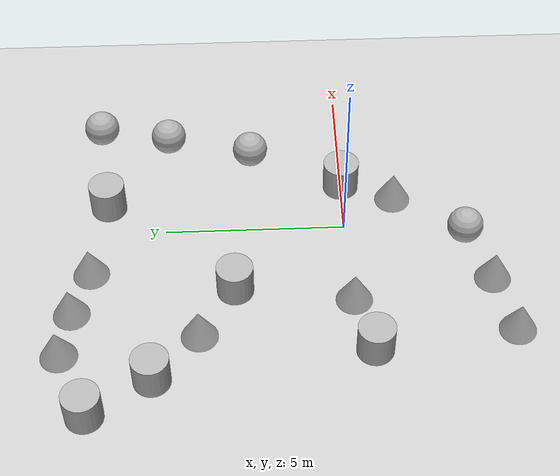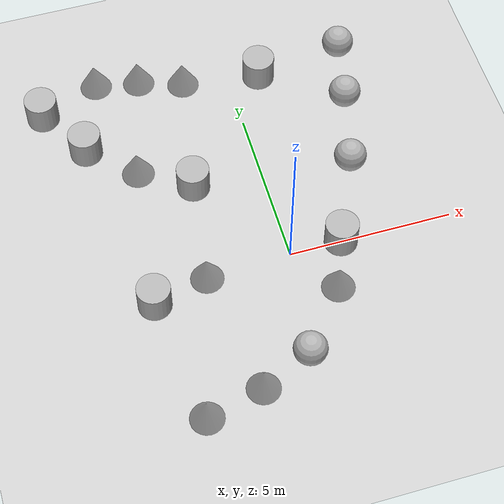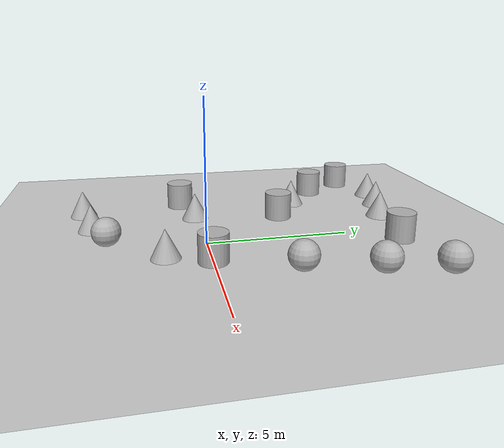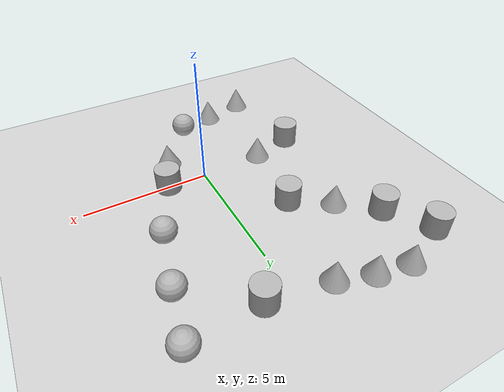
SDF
<?xml version="1.0" ?>
<sdf version='1.10'>
  <world name='vehicle_test'>
    <physics name='1ms' type='ignored'>
      <max_step_size>0.001</max_step_size>
      <real_time_factor>1.0</real_time_factor>
      <real_time_update_rate>1000</real_time_update_rate>
    </physics>
    <plugin name='gz::sim::systems::Physics' filename='gz-sim-physics-system'/>
    <plugin filename="gz-sim-sensors-system" name="gz::sim::systems::Sensors">
      <render_engine>ogre2</render_engine>
    </plugin>
    <plugin name='gz::sim::systems::UserCommands' filename='gz-sim-user-commands-system'/>
    <plugin name='gz::sim::systems::SceneBroadcaster' filename='gz-sim-scene-broadcaster-system'/>
    <plugin name='gz::sim::systems::Contact' filename='gz-sim-contact-system'/>
    <gravity>0 0 -9.8000000000000007</gravity>
    <magnetic_field>5.5644999999999998e-06 2.2875799999999999e-05 -4.2388400000000002e-05</magnetic_field>
    <atmosphere type='adiabatic'/>
    <scene>
      <ambient>0.400000006 0.400000006 0.400000006 1</ambient>
      <background>0.699999988 0.699999988 0.699999988 1</background>
      <shadows>true</shadows>
    </scene>

    <gui fullscreen="0">

      <!-- 3D scene -->
      <plugin filename="MinimalScene" name="3D View">
        <gz-gui>
          <title>3D View</title>
          <property type="bool" key="showTitleBar">false</property>
          <property type="string" key="state">docked</property>
        </gz-gui>

        <engine>ogre2</engine>
        <scene>scene</scene>
        <ambient_light>0.4 0.4 0.4</ambient_light>
        <background_color>0.8 0.8 0.8</background_color>
        <camera_pose>-6 0 6 0 0.5 0</camera_pose>
      </plugin>

      <!-- Plugins that add functionality to the scene -->
      <plugin filename="EntityContextMenuPlugin" name="Entity context menu">
        <gz-gui>
          <property key="state" type="string">floating</property>
          <property key="width" type="double">5</property>
          <property key="height" type="double">5</property>
          <property key="showTitleBar" type="bool">false</property>
        </gz-gui>
      </plugin>
      <plugin filename="GzSceneManager" name="Scene Manager">
        <gz-gui>
          <property key="resizable" type="bool">false</property>
          <property key="width" type="double">5</property>
          <property key="height" type="double">5</property>
          <property key="state" type="string">floating</property>
          <property key="showTitleBar" type="bool">false</property>
        </gz-gui>
      </plugin>
      <plugin filename="InteractiveViewControl" name="Interactive view control">
        <gz-gui>
          <property key="resizable" type="bool">false</property>
          <property key="width" type="double">5</property>
          <property key="height" type="double">5</property>
          <property key="state" type="string">floating</property>
          <property key="showTitleBar" type="bool">false</property>
        </gz-gui>
      </plugin>
      <plugin filename="CameraTracking" name="Camera Tracking">
        <gz-gui>
          <property key="resizable" type="bool">false</property>
          <property key="width" type="double">5</property>
          <property key="height" type="double">5</property>
          <property key="state" type="string">floating</property>
          <property key="showTitleBar" type="bool">false</property>
        </gz-gui>
      </plugin>
      <!-- World control -->
      <plugin filename="WorldControl" name="World control">
        <gz-gui>
          <title>World control</title>
          <property type="bool" key="showTitleBar">false</property>
          <property type="bool" key="resizable">false</property>
          <property type="double" key="height">72</property>
          <property type="double" key="z">1</property>

          <property type="string" key="state">floating</property>
          <anchors target="3D View">
            <line own="left" target="left"/>
            <line own="bottom" target="bottom"/>
          </anchors>
        </gz-gui>

        <play_pause>true</play_pause>
        <step>true</step>
        <start_paused>true</start_paused>
        <use_event>true</use_event>

      </plugin>

      <!-- World statistics -->
      <plugin filename="WorldStats" name="World stats">
        <gz-gui>
          <title>World stats</title>
          <property type="bool" key="showTitleBar">false</property>
          <property type="bool" key="resizable">false</property>
          <property type="double" key="height">110</property>
          <property type="double" key="width">290</property>
          <property type="double" key="z">1</property>

          <property type="string" key="state">floating</property>
          <anchors target="3D View">
            <line own="right" target="right"/>
            <line own="bottom" target="bottom"/>
          </anchors>
        </gz-gui>

        <sim_time>true</sim_time>
        <real_time>true</real_time>
        <real_time_factor>true</real_time_factor>
        <iterations>true</iterations>
      </plugin>

      <plugin filename="ImageDisplay" name="Image Display">
        <gz-gui>
          <property key="state" type="string">docked</property>
        </gz-gui>
        <topic>camera</topic>
      </plugin>

      <!-- Inspector -->
      <plugin filename="ComponentInspector" name="Component inspector">
        <gz-gui>
          <property type="string" key="state">docked</property>
        </gz-gui>
      </plugin>

      <!-- Entity tree -->
      <plugin filename="EntityTree" name="Entity tree">
        <gz-gui>
          <property type="string" key="state">docked</property>
        </gz-gui>
      </plugin>
    </gui>

    <model name='ground_plane'>
      <static>true</static>
      <link name='link'>
        <collision name='collision'>
          <geometry>
            <plane>
              <normal>0 0 1</normal>
              <size>100 100</size>
            </plane>
          </geometry>
          <surface>
            <friction>
              <ode/>
            </friction>
            <bounce/>
            <contact/>
          </surface>
        </collision>
        <visual name='visual'>
          <geometry>
            <plane>
              <normal>0 0 1</normal>
              <size>100 100</size>
            </plane>
          </geometry>
          <material>
            <ambient>0.800000012 0.800000012 0.800000012 1</ambient>
            <diffuse>0.800000012 0.800000012 0.800000012 1</diffuse>
            <specular>0.800000012 0.800000012 0.800000012 1</specular>
          </material>
        </visual>
        <pose>0 0 0 0 0 0</pose>
        <inertial>
          <pose>0 0 0 0 0 0</pose>
          <mass>1</mass>
          <inertia>
            <ixx>1</ixx>
            <ixy>0</ixy>
            <ixz>0</ixz>
            <iyy>1</iyy>
            <iyz>0</iyz>
            <izz>1</izz>
          </inertia>
        </inertial>
        <enable_wind>false</enable_wind>
      </link>
      <pose>0 0 0 0 0 0</pose>
      <self_collide>false</self_collide>
    </model>
    <model name='cylinder'>
      <pose>1.5647848737874555 0.010033061765128103 0.49999944042621192 1.1442302697829374e-08 2.7877531892033051e-08 -0.00070044208963606996</pose>
      <link name='cylinder_link'>
        <inertial>
          <inertia>
            <ixx>0.14580000000000001</ixx>
            <ixy>0</ixy>
            <ixz>0</ixz>
            <iyy>0.14580000000000001</iyy>
            <iyz>0</iyz>
            <izz>0.125</izz>
          </inertia>
          <mass>1</mass>
          <pose>0 0 0 0 0 0</pose>
        </inertial>
        <collision name='cylinder_collision'>
          <geometry>
            <cylinder>
              <radius>0.5</radius>
              <length>1</length>
            </cylinder>
          </geometry>
          <surface>
            <friction>
              <ode/>
            </friction>
            <bounce/>
            <contact/>
          </surface>
        </collision>
        <visual name='cylinder_visual'>
          <geometry>
            <cylinder>
              <radius>0.5</radius>
              <length>1</length>
            </cylinder>
          </geometry>
          <material>
            <ambient>0.300000012 0.300000012 0.300000012 1</ambient>
            <diffuse>0.699999988 0.699999988 0.699999988 1</diffuse>
            <specular>1 1 1 1</specular>
          </material>
        </visual>
        <pose>0 0 0 0 0 0</pose>
        <enable_wind>false</enable_wind>
      </link>
      <static>false</static>
      <self_collide>false</self_collide>
    </model>
    <model name='cone'>
      <pose>1.011980552601476 -1.4393473997717166 0.49999999695181524 9.7358342084038461e-11 -1.9626711399837725e-05 4.5009593917777258e-11</pose>
      <link name='cone_link'>
        <inertial>
          <inertia>
            <ixx>0.074999999999999997</ixx>
            <ixy>0</ixy>
            <ixz>0</ixz>
            <iyy>0.074999999999999997</iyy>
            <iyz>0</iyz>
            <izz>0.074999999999999997</izz>
          </inertia>
          <mass>1</mass>
          <pose>0 0 0 0 0 0</pose>
        </inertial>
        <collision name='cone_collision'>
          <geometry>
            <cone>
              <radius>0.5</radius>
              <length>1</length>
            </cone>
          </geometry>
          <surface>
            <friction>
              <ode/>
            </friction>
            <bounce/>
            <contact/>
          </surface>
        </collision>
        <visual name='cone_visual'>
          <geometry>
            <cone>
              <radius>0.5</radius>
              <length>1</length>
            </cone>
          </geometry>
          <material>
            <ambient>0.300000012 0.300000012 0.300000012 1</ambient>
            <diffuse>0.699999988 0.699999988 0.699999988 1</diffuse>
            <specular>1 1 1 1</specular>
          </material>
        </visual>
        <pose>0 0 0 0 0 0</pose>
        <enable_wind>false</enable_wind>
      </link>
      <static>false</static>
      <self_collide>false</self_collide>
    </model>
    <model name='sphere'>
      <pose>-0.45418939601739705 -3.3253064551731351 0.499999999902001 0 0 0</pose>
      <link name='sphere_link'>
        <inertial>
          <inertia>
            <ixx>0.10000000000000001</ixx>
            <ixy>0</ixy>
            <ixz>0</ixz>
            <iyy>0.10000000000000001</iyy>
            <iyz>0</iyz>
            <izz>0.10000000000000001</izz>
          </inertia>
          <mass>1</mass>
          <pose>0 0 0 0 0 0</pose>
        </inertial>
        <collision name='sphere_collision'>
          <geometry>
            <sphere>
              <radius>0.5</radius>
            </sphere>
          </geometry>
          <surface>
            <friction>
              <ode/>
            </friction>
            <bounce/>
            <contact/>
          </surface>
        </collision>
        <visual name='sphere_visual'>
          <geometry>
            <sphere>
              <radius>0.5</radius>
            </sphere>
          </geometry>
          <material>
            <ambient>0.300000012 0.300000012 0.300000012 1</ambient>
            <diffuse>0.699999988 0.699999988 0.699999988 1</diffuse>
            <specular>1 1 1 1</specular>
          </material>
        </visual>
        <pose>0 0 0 0 0 0</pose>
        <enable_wind>false</enable_wind>
      </link>
      <static>false</static>
      <self_collide>false</self_collide>
    </model>
    <model name='cone_1'>
      <pose>-1.9885448380206669 -3.9166643840087687 0.49999347335369304 7.6259716499693577e-05 -0.00033780207860231243 -0.0034619177063149298</pose>
      <link name='cone_link'>
        <inertial>
          <inertia>
            <ixx>0.074999999999999997</ixx>
            <ixy>0</ixy>
            <ixz>0</ixz>
            <iyy>0.074999999999999997</iyy>
            <iyz>0</iyz>
            <izz>0.074999999999999997</izz>
          </inertia>
          <mass>1</mass>
        </inertial>
        <collision name='cone_collision'>
          <geometry>
            <cone>
              <radius>0.5</radius>
              <length>1</length>
            </cone>
          </geometry>
          <surface>
            <friction>
              <ode/>
            </friction>
            <bounce/>
            <contact/>
          </surface>
        </collision>
        <visual name='cone_visual'>
          <geometry>
            <cone>
              <radius>0.5</radius>
              <length>1</length>
            </cone>
          </geometry>
          <material>
            <ambient>0.300000012 0.300000012 0.300000012 1</ambient>
            <diffuse>0.699999988 0.699999988 0.699999988 1</diffuse>
            <specular>1 1 1 1</specular>
          </material>
        </visual>
      </link>
      <static>false</static>
      <self_collide>false</self_collide>
    </model>
    <model name='cone_2'>
      <pose>-3.729447961379035 -4.3420305184071379 0.5000006705392287 0.00032293008135543457 -0.001948347182720245 -0.0013240089350690537</pose>
      <link name='cone_link'>
        <inertial>
          <inertia>
            <ixx>0.074999999999999997</ixx>
            <ixy>0</ixy>
            <ixz>0</ixz>
            <iyy>0.074999999999999997</iyy>
            <iyz>0</iyz>
            <izz>0.074999999999999997</izz>
          </inertia>
          <mass>1</mass>
        </inertial>
        <collision name='cone_collision'>
          <geometry>
            <cone>
              <radius>0.5</radius>
              <length>1</length>
            </cone>
          </geometry>
          <surface>
            <friction>
              <ode/>
            </friction>
            <bounce/>
            <contact/>
          </surface>
        </collision>
        <visual name='cone_visual'>
          <geometry>
            <cone>
              <radius>0.5</radius>
              <length>1</length>
            </cone>
          </geometry>
          <material>
            <ambient>0.300000012 0.300000012 0.300000012 1</ambient>
            <diffuse>0.699999988 0.699999988 0.699999988 1</diffuse>
            <specular>1 1 1 1</specular>
          </material>
        </visual>
      </link>
      <static>false</static>
      <self_collide>false</self_collide>
    </model>
    <model name='cone_3'>
      <pose>-2.5738506671006336 -0.10183911211924816 0.50000747423529857 0.00053269511846450646 -0.0088594424058349146 0.0008755440853242994</pose>
      <link name='cone_link'>
        <inertial>
          <inertia>
            <ixx>0.074999999999999997</ixx>
            <ixy>0</ixy>
            <ixz>0</ixz>
            <iyy>0.074999999999999997</iyy>
            <iyz>0</iyz>
            <izz>0.074999999999999997</izz>
          </inertia>
          <mass>1</mass>
        </inertial>
        <collision name='cone_collision'>
          <geometry>
            <cone>
              <radius>0.5</radius>
              <length>1</length>
            </cone>
          </geometry>
          <surface>
            <friction>
              <ode/>
            </friction>
            <bounce/>
            <contact/>
          </surface>
        </collision>
        <visual name='cone_visual'>
          <geometry>
            <cone>
              <radius>0.5</radius>
              <length>1</length>
            </cone>
          </geometry>
          <material>
            <ambient>0.300000012 0.300000012 0.300000012 1</ambient>
            <diffuse>0.699999988 0.699999988 0.699999988 1</diffuse>
            <specular>1 1 1 1</specular>
          </material>
        </visual>
      </link>
      <static>false</static>
      <self_collide>false</self_collide>
    </model>
    <model name='cylinder_1'>
      <pose>-4.2439677708986236 -0.53501030915123304 0.49999944744188046 -1.7793100737709771e-08 -4.335983781538555e-08 -0.00070056579943730401</pose>
      <link name='cylinder_link'>
        <inertial>
          <inertia>
            <ixx>0.14580000000000001</ixx>
            <ixy>0</ixy>
            <ixz>0</ixz>
            <iyy>0.14580000000000001</iyy>
            <iyz>0</iyz>
            <izz>0.125</izz>
          </inertia>
          <mass>1</mass>
        </inertial>
        <collision name='cylinder_collision'>
          <geometry>
            <cylinder>
              <radius>0.5</radius>
              <length>1</length>
            </cylinder>
          </geometry>
          <surface>
            <friction>
              <ode/>
            </friction>
            <bounce/>
            <contact/>
          </surface>
        </collision>
        <visual name='cylinder_visual'>
          <geometry>
            <cylinder>
              <radius>0.5</radius>
              <length>1</length>
            </cylinder>
          </geometry>
          <material>
            <ambient>0.300000012 0.300000012 0.300000012 1</ambient>
            <diffuse>0.699999988 0.699999988 0.699999988 1</diffuse>
            <specular>1 1 1 1</specular>
          </material>
        </visual>
      </link>
      <static>false</static>
      <self_collide>false</self_collide>
    </model>
    <model name='cylinder_2'>
      <pose>-2.1317149332918617 3.0851914767424966 0.49999945265357915 -2.1145951382164412e-08 -5.1597813862078297e-08 -0.00070033138959422591</pose>
      <link name='cylinder_link'>
        <inertial>
          <inertia>
            <ixx>0.14580000000000001</ixx>
            <ixy>0</ixy>
            <ixz>0</ixz>
            <iyy>0.14580000000000001</iyy>
            <iyz>0</iyz>
            <izz>0.125</izz>
          </inertia>
          <mass>1</mass>
        </inertial>
        <collision name='cylinder_collision'>
          <geometry>
            <cylinder>
              <radius>0.5</radius>
              <length>1</length>
            </cylinder>
          </geometry>
          <surface>
            <friction>
              <ode/>
            </friction>
            <bounce/>
            <contact/>
          </surface>
        </collision>
        <visual name='cylinder_visual'>
          <geometry>
            <cylinder>
              <radius>0.5</radius>
              <length>1</length>
            </cylinder>
          </geometry>
          <material>
            <ambient>0.300000012 0.300000012 0.300000012 1</ambient>
            <diffuse>0.699999988 0.699999988 0.699999988 1</diffuse>
            <specular>1 1 1 1</specular>
          </material>
        </visual>
      </link>
      <static>false</static>
      <self_collide>false</self_collide>
    </model>
    <model name='cylinder_3'>
      <pose>0.9680648221317355 6.6413886767882664 0.49999934507746907 7.8902019559198622e-08 1.9300384302545624e-07 -0.00070041176143936735</pose>
      <link name='cylinder_link'>
        <inertial>
          <inertia>
            <ixx>0.14580000000000001</ixx>
            <ixy>0</ixy>
            <ixz>0</ixz>
            <iyy>0.14580000000000001</iyy>
            <iyz>0</iyz>
            <izz>0.125</izz>
          </inertia>
          <mass>1</mass>
        </inertial>
        <collision name='cylinder_collision'>
          <geometry>
            <cylinder>
              <radius>0.5</radius>
              <length>1</length>
            </cylinder>
          </geometry>
          <surface>
            <friction>
              <ode/>
            </friction>
            <bounce/>
            <contact/>
          </surface>
        </collision>
        <visual name='cylinder_visual'>
          <geometry>
            <cylinder>
              <radius>0.5</radius>
              <length>1</length>
            </cylinder>
          </geometry>
          <material>
            <ambient>0.300000012 0.300000012 0.300000012 1</ambient>
            <diffuse>0.699999988 0.699999988 0.699999988 1</diffuse>
            <specular>1 1 1 1</specular>
          </material>
        </visual>
      </link>
      <static>false</static>
      <self_collide>false</self_collide>
    </model>
    <model name='sphere_1'>
      <pose>2.7082596078731678 2.5902424265151147 0.499999999902001 0 0 0</pose>
      <link name='sphere_link'>
        <inertial>
          <inertia>
            <ixx>0.10000000000000001</ixx>
            <ixy>0</ixy>
            <ixz>0</ixz>
            <iyy>0.10000000000000001</iyy>
            <iyz>0</iyz>
            <izz>0.10000000000000001</izz>
          </inertia>
          <mass>1</mass>
        </inertial>
        <collision name='sphere_collision'>
          <geometry>
            <sphere>
              <radius>0.5</radius>
            </sphere>
          </geometry>
          <surface>
            <friction>
              <ode/>
            </friction>
            <bounce/>
            <contact/>
          </surface>
        </collision>
        <visual name='sphere_visual'>
          <geometry>
            <sphere>
              <radius>0.5</radius>
            </sphere>
          </geometry>
          <material>
            <ambient>0.300000012 0.300000012 0.300000012 1</ambient>
            <diffuse>0.699999988 0.699999988 0.699999988 1</diffuse>
            <specular>1 1 1 1</specular>
          </material>
        </visual>
      </link>
      <static>false</static>
      <self_collide>false</self_collide>
    </model>
    <model name='sphere_2'>
      <pose>3.3215863858737693 4.9727112815431731 0.499999999902001 0 0 0</pose>
      <link name='sphere_link'>
        <inertial>
          <inertia>
            <ixx>0.10000000000000001</ixx>
            <ixy>0</ixy>
            <ixz>0</ixz>
            <iyy>0.10000000000000001</iyy>
            <iyz>0</iyz>
            <izz>0.10000000000000001</izz>
          </inertia>
          <mass>1</mass>
        </inertial>
        <collision name='sphere_collision'>
          <geometry>
            <sphere>
              <radius>0.5</radius>
            </sphere>
          </geometry>
          <surface>
            <friction>
              <ode/>
            </friction>
            <bounce/>
            <contact/>
          </surface>
        </collision>
        <visual name='sphere_visual'>
          <geometry>
            <sphere>
              <radius>0.5</radius>
            </sphere>
          </geometry>
          <material>
            <ambient>0.300000012 0.300000012 0.300000012 1</ambient>
            <diffuse>0.699999988 0.699999988 0.699999988 1</diffuse>
            <specular>1 1 1 1</specular>
          </material>
        </visual>
      </link>
      <static>false</static>
      <self_collide>false</self_collide>
    </model>
    <model name='sphere_3'>
      <pose>3.7421691184746653 6.9550475964609415 0.499999999902001 0 0 0</pose>
      <link name='sphere_link'>
        <inertial>
          <inertia>
            <ixx>0.10000000000000001</ixx>
            <ixy>0</ixy>
            <ixz>0</ixz>
            <iyy>0.10000000000000001</iyy>
            <iyz>0</iyz>
            <izz>0.10000000000000001</izz>
          </inertia>
          <mass>1</mass>
        </inertial>
        <collision name='sphere_collision'>
          <geometry>
            <sphere>
              <radius>0.5</radius>
            </sphere>
          </geometry>
          <surface>
            <friction>
              <ode/>
            </friction>
            <bounce/>
            <contact/>
          </surface>
        </collision>
        <visual name='sphere_visual'>
          <geometry>
            <sphere>
              <radius>0.5</radius>
            </sphere>
          </geometry>
          <material>
            <ambient>0.300000012 0.300000012 0.300000012 1</ambient>
            <diffuse>0.699999988 0.699999988 0.699999988 1</diffuse>
            <specular>1 1 1 1</specular>
          </material>
        </visual>
      </link>
      <static>false</static>
      <self_collide>false</self_collide>
    </model>
    <model name='cone_3_1'>
      <pose>-1.4401363501770927 7.0078644756552047 0.49999954086761894 4.0149677599739711e-06 -1.2083104029132789e-05 0.00031212502541449642</pose>
      <link name='cone_link'>
        <inertial>
          <inertia>
            <ixx>0.074999999999999997</ixx>
            <ixy>0</ixy>
            <ixz>0</ixz>
            <iyy>0.074999999999999997</iyy>
            <iyz>0</iyz>
            <izz>0.074999999999999997</izz>
          </inertia>
          <mass>1</mass>
        </inertial>
        <collision name='cone_collision'>
          <geometry>
            <cone>
              <radius>0.5</radius>
              <length>1</length>
            </cone>
          </geometry>
          <surface>
            <friction>
              <ode/>
            </friction>
            <bounce/>
            <contact/>
          </surface>
        </collision>
        <visual name='cone_visual'>
          <geometry>
            <cone>
              <radius>0.5</radius>
              <length>1</length>
            </cone>
          </geometry>
          <material>
            <ambient>0.300000012 0.300000012 0.300000012 1</ambient>
            <diffuse>0.699999988 0.699999988 0.699999988 1</diffuse>
            <specular>1 1 1 1</specular>
          </material>
        </visual>
      </link>
      <static>false</static>
      <self_collide>false</self_collide>
    </model>
    <model name='cone_3_2'>
      <pose>-2.7926991232598226 7.4541219019438216 0.49999701182026479 7.7776436718172356e-06 -2.4283382746721904e-05 0.00081182414386401786</pose>
      <link name='cone_link'>
        <inertial>
          <inertia>
            <ixx>0.074999999999999997</ixx>
            <ixy>0</ixy>
            <ixz>0</ixz>
            <iyy>0.074999999999999997</iyy>
            <iyz>0</iyz>
            <izz>0.074999999999999997</izz>
          </inertia>
          <mass>1</mass>
        </inertial>
        <collision name='cone_collision'>
          <geometry>
            <cone>
              <radius>0.5</radius>
              <length>1</length>
            </cone>
          </geometry>
          <surface>
            <friction>
              <ode/>
            </friction>
            <bounce/>
            <contact/>
          </surface>
        </collision>
        <visual name='cone_visual'>
          <geometry>
            <cone>
              <radius>0.5</radius>
              <length>1</length>
            </cone>
          </geometry>
          <material>
            <ambient>0.300000012 0.300000012 0.300000012 1</ambient>
            <diffuse>0.699999988 0.699999988 0.699999988 1</diffuse>
            <specular>1 1 1 1</specular>
          </material>
        </visual>
      </link>
      <static>false</static>
      <self_collide>false</self_collide>
    </model>
    <model name='cone_3_3'>
      <pose>-4.1351442499035578 7.6933207583688699 0.4999996782153629 2.1124586765190608e-07 -8.1925395151174911e-07 -0.0031196040527844858</pose>
      <link name='cone_link'>
        <inertial>
          <inertia>
            <ixx>0.074999999999999997</ixx>
            <ixy>0</ixy>
            <ixz>0</ixz>
            <iyy>0.074999999999999997</iyy>
            <iyz>0</iyz>
            <izz>0.074999999999999997</izz>
          </inertia>
          <mass>1</mass>
        </inertial>
        <collision name='cone_collision'>
          <geometry>
            <cone>
              <radius>0.5</radius>
              <length>1</length>
            </cone>
          </geometry>
          <surface>
            <friction>
              <ode/>
            </friction>
            <bounce/>
            <contact/>
          </surface>
        </collision>
        <visual name='cone_visual'>
          <geometry>
            <cone>
              <radius>0.5</radius>
              <length>1</length>
            </cone>
          </geometry>
          <material>
            <ambient>0.300000012 0.300000012 0.300000012 1</ambient>
            <diffuse>0.699999988 0.699999988 0.699999988 1</diffuse>
            <specular>1 1 1 1</specular>
          </material>
        </visual>
      </link>
      <static>false</static>
      <self_collide>false</self_collide>
    </model>
    <model name='cone_3_4'>
      <pose>-3.6296390935801401 4.0415285838121466 0.49999365938259321 1.3029278747744347e-05 -1.8019662355053635e-05 -0.0031233400751548806</pose>
      <link name='cone_link'>
        <inertial>
          <inertia>
            <ixx>0.074999999999999997</ixx>
            <ixy>0</ixy>
            <ixz>0</ixz>
            <iyy>0.074999999999999997</iyy>
            <iyz>0</iyz>
            <izz>0.074999999999999997</izz>
          </inertia>
          <mass>1</mass>
        </inertial>
        <collision name='cone_collision'>
          <geometry>
            <cone>
              <radius>0.5</radius>
              <length>1</length>
            </cone>
          </geometry>
          <surface>
            <friction>
              <ode/>
            </friction>
            <bounce/>
            <contact/>
          </surface>
        </collision>
        <visual name='cone_visual'>
          <geometry>
            <cone>
              <radius>0.5</radius>
              <length>1</length>
            </cone>
          </geometry>
          <material>
            <ambient>0.300000012 0.300000012 0.300000012 1</ambient>
            <diffuse>0.699999988 0.699999988 0.699999988 1</diffuse>
            <specular>1 1 1 1</specular>
          </material>
        </visual>
      </link>
      <static>false</static>
      <self_collide>false</self_collide>
    </model>
    <model name='cylinder_1_1'>
      <pose>-4.9808429383310022 5.2479112120469615 0.499999957835572 4.6413840776332451e-07 1.1213792842573786e-06 -0.00070033816129024429</pose>
      <link name='cylinder_link'>
        <inertial>
          <inertia>
            <ixx>0.14580000000000001</ixx>
            <ixy>0</ixy>
            <ixz>0</ixz>
            <iyy>0.14580000000000001</iyy>
            <iyz>0</iyz>
            <izz>0.125</izz>
          </inertia>
          <mass>1</mass>
        </inertial>
        <collision name='cylinder_collision'>
          <geometry>
            <cylinder>
              <radius>0.5</radius>
              <length>1</length>
            </cylinder>
          </geometry>
          <surface>
            <friction>
              <ode/>
            </friction>
            <bounce/>
            <contact/>
          </surface>
        </collision>
        <visual name='cylinder_visual'>
          <geometry>
            <cylinder>
              <radius>0.5</radius>
              <length>1</length>
            </cylinder>
          </geometry>
          <material>
            <ambient>0.300000012 0.300000012 0.300000012 1</ambient>
            <diffuse>0.699999988 0.699999988 0.699999988 1</diffuse>
            <specular>1 1 1 1</specular>
          </material>
        </visual>
      </link>
      <static>false</static>
      <self_collide>false</self_collide>
    </model>
    <model name='cylinder_1_2'>
      <pose>-5.9999057751277451 6.9088173396516224 0.4999999281619526 6.0660830138413059e-07 1.4666125197574209e-06 -0.00070049979442285176</pose>
      <link name='cylinder_link'>
        <inertial>
          <inertia>
            <ixx>0.14580000000000001</ixx>
            <ixy>0</ixy>
            <ixz>0</ixz>
            <iyy>0.14580000000000001</iyy>
            <iyz>0</iyz>
            <izz>0.125</izz>
          </inertia>
          <mass>1</mass>
        </inertial>
        <collision name='cylinder_collision'>
          <geometry>
            <cylinder>
              <radius>0.5</radius>
              <length>1</length>
            </cylinder>
          </geometry>
          <surface>
            <friction>
              <ode/>
            </friction>
            <bounce/>
            <contact/>
          </surface>
        </collision>
        <visual name='cylinder_visual'>
          <geometry>
            <cylinder>
              <radius>0.5</radius>
              <length>1</length>
            </cylinder>
          </geometry>
          <material>
            <ambient>0.300000012 0.300000012 0.300000012 1</ambient>
            <diffuse>0.699999988 0.699999988 0.699999988 1</diffuse>
            <specular>1 1 1 1</specular>
          </material>
        </visual>
      </link>
      <static>false</static>
      <self_collide>false</self_collide>
    </model>
    <light name='sun' type='directional'>
      <pose>0 0 10 0 0 0</pose>
      <cast_shadows>true</cast_shadows>
      <intensity>1</intensity>
      <direction>-0.5 0.10000000000000001 -0.90000000000000002</direction>
      <diffuse>0.800000012 0.800000012 0.800000012 1</diffuse>
      <specular>0.200000003 0.200000003 0.200000003 1</specular>
      <attenuation>
        <range>1000</range>
        <linear>0.01</linear>
        <constant>0.90000000000000002</constant>
        <quadratic>0.001</quadratic>
      </attenuation>
      <spot>
        <inner_angle>0</inner_angle>
        <outer_angle>0</outer_angle>
        <falloff>0</falloff>
      </spot>
    </light>
  </world>
</sdf>
